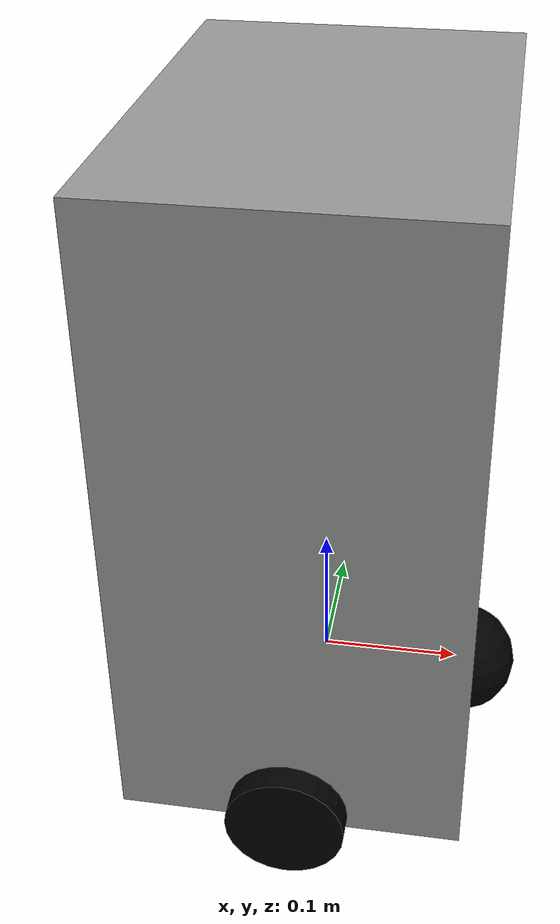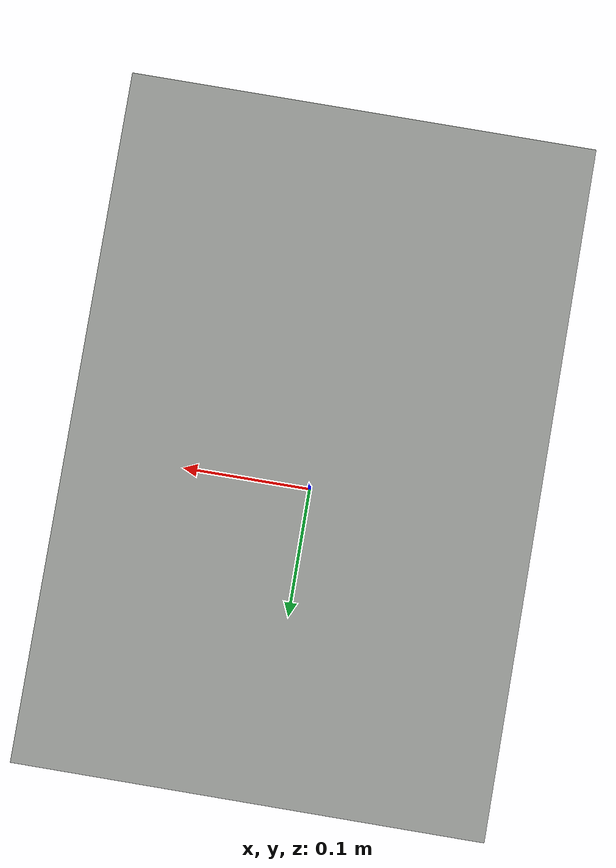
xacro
<?xml version="1.0"?>
<robot xmlns:xacro="http://www.ros.org/wiki/xacro" >

    <xacro:include filename="inertial_macros.xacro"/>

    <xacro:property name="chassis_length" value="0.230"/>
    <xacro:property name="chassis_width" value="0.340"/>
    <xacro:property name="chassis_height" value="0.440"/>
    <xacro:property name="chassis_mass" value="2.4"/>
    <xacro:property name="wheel_radius" value="0.04"/>
    <xacro:property name="wheel_thickness" value="0.035"/>
    <xacro:property name="wheel_mass" value="0.1"/>
    <xacro:property name="wheel_offset_x" value="0.115"/>
    <xacro:property name="wheel_offset_y" value="0.170"/>
    <xacro:property name="wheel_offset_z" value="0.01"/>
    <xacro:property name="caster_wheel_radius" value="0.04"/>
    <xacro:property name="caster_wheel_mass" value="0.01"/>
    <xacro:property name="caster_wheel_offset_x" value="0.220"/>
    <xacro:property name="caster_wheel_offset_z" value="${wheel_offset_z - wheel_radius + caster_wheel_radius}"/>

    <material name="white">
        <color rgba="1 1 1 1" />
    </material>

    <material name="orange">
        <color rgba="1 0.3 0.1 1"/>
    </material>

    <material name="blue">
        <color rgba="0.2 0.2 1 1"/>
    </material>

    <material name="black">
        <color rgba="0 0 0 1"/>
    </material>

    <material name="red">
        <color rgba="1 0 0 1"/>
    </material>

    <material name="grey" >
        <color rgba="0.5725490196078431 0.5843137254901961 0.5686274509803921 1.0" />
    </material>

    <!-- BASE LINK -->

    <link name="base_link"></link>

    <!-- BASE_FOOTPRINT LINK -->

    <joint name="base_footprint_joint" type="fixed">
        <parent link="base_link"/>
        <child link="base_footprint"/>
        <origin xyz="0 0 0" rpy="0 0 0"/>
    </joint>

    <link name="base_footprint">
    </link>

    <!-- CHASSIS LINK -->

    <joint name="chassis_joint" type="fixed">
        <parent link="base_link"/>
        <child link="chassis"/>
        <origin xyz="${-wheel_offset_x} 0 ${-wheel_offset_z}"/>
    </joint>

    <link name="chassis">
        <visual>
            <origin xyz="${chassis_length/2} 0 ${chassis_height/2}"/>
            <geometry>
                <box size="${chassis_length} ${chassis_width} ${chassis_height}"/>
            </geometry>
            <material name="grey"/>
        </visual>
        <collision>
            <origin xyz="${chassis_length/2} 0 ${chassis_height/2}"/>
            <geometry>
                <box size="${chassis_length} ${chassis_width} ${chassis_height}"/>
            </geometry>
        </collision>
        <xacro:inertial_box mass="0.5" x="${chassis_length}" y="${chassis_width}" z="${chassis_height}">
            <origin xyz="${chassis_length/2} 0 ${chassis_height/2}" rpy="0 0 0"/>
        </xacro:inertial_box>
    </link>

    <gazebo reference="chassis">
        <material>Gazebo/Grey</material>
    </gazebo>

    <!-- LEFT WHEEL LINK -->

    <joint name="left_wheel_joint" type="continuous">
        <parent link="base_link"/>
        <child link="left_wheel"/>
        <origin xyz="0 ${wheel_offset_y} 0" rpy="-${pi/2} 0 0" />
        <axis xyz="0 0 1"/>
    </joint>

    <link name="left_wheel">
        <visual>
            <geometry>
                <cylinder radius="${wheel_radius}" length="${wheel_thickness}"/>
            </geometry>
            <material name="black"/>
        </visual>
        <collision>
            <geometry>
                <sphere radius="${wheel_radius}"/>
            </geometry>
        </collision>
        <xacro:inertial_cylinder mass="${wheel_mass}" length="${wheel_thickness}" radius="${wheel_radius}">
            <origin xyz="0 0 0" rpy="0 0 0"/>
        </xacro:inertial_cylinder>
    </link>

    <gazebo reference="left_wheel">
        <material>Gazebo/Black</material>
    </gazebo>

    <!-- RIGHT WHEEL LINK -->

    <joint name="right_wheel_joint" type="continuous">
        <parent link="base_link"/>
        <child link="right_wheel"/>
        <origin xyz="0 ${-wheel_offset_y} 0" rpy="${pi/2} 0 0" />
        <axis xyz="0 0 -1"/>
    </joint>

    <link name="right_wheel">
        <visual>
            <geometry>
                <cylinder radius="${wheel_radius}" length="${wheel_thickness}"/>
            </geometry>
            <material name="black"/>
        </visual>
        <collision>
            <geometry>
                <sphere radius="${wheel_radius}"/>
            </geometry>
        </collision>
        <xacro:inertial_cylinder mass="${wheel_mass}" length="${wheel_thickness}" radius="${wheel_radius}">
            <origin xyz="0 0 0" rpy="0 0 0"/>
        </xacro:inertial_cylinder>
    </link>

    <gazebo reference="right_wheel">
        <material>Gazebo/Black</material>
    </gazebo>

    <!-- CASTER WHEEL LINK -->

    <joint name="caster_wheel_joint_front" type="fixed">
        <parent link="chassis"/>
        <child link="caster_wheel_front"/>
        <origin xyz="0 0 ${caster_wheel_offset_z}"/>
    </joint>

    <link name="caster_wheel_front">
        <visual>
            <geometry>
                <sphere radius="${caster_wheel_radius}"/>
            </geometry>
            <material name="black"/>
        </visual>
        <collision>
            <geometry>
                <sphere radius="${caster_wheel_radius}"/>
            </geometry>
        </collision>
        <xacro:inertial_sphere mass="${caster_wheel_mass}" radius="${caster_wheel_radius}">
            <origin xyz="0 0 0" rpy="0 0 0"/>
        </xacro:inertial_sphere>
    </link>

    <gazebo reference="caster_wheel_front">
        <material>Gazebo/Black</material>
        <mu1 value="0.001"/>
        <mu2 value="0.001"/>
    </gazebo>

    <joint name="caster_wheel_joint_back" type="fixed">
        <parent link="chassis"/>
        <child link="caster_wheel_back"/>
        <origin xyz="${caster_wheel_offset_x} 0 ${caster_wheel_offset_z}"/>
    </joint>

    <link name="caster_wheel_back">
        <visual>
            <geometry>
                <sphere radius="${caster_wheel_radius}"/>
            </geometry>
            <material name="black"/>
        </visual>
        <collision>
            <geometry>
                <sphere radius="${caster_wheel_radius}"/>
            </geometry>
        </collision>
        <xacro:inertial_sphere mass="${caster_wheel_mass}" radius="${caster_wheel_radius}">
            <origin xyz="0 0 0" rpy="0 0 0"/>
        </xacro:inertial_sphere>
    </link>

    <gazebo reference="caster_wheel_back">
        <material>Gazebo/Black</material>
        <mu1 value="0.001"/>
        <mu2 value="0.001"/>
    </gazebo>

</robot>
